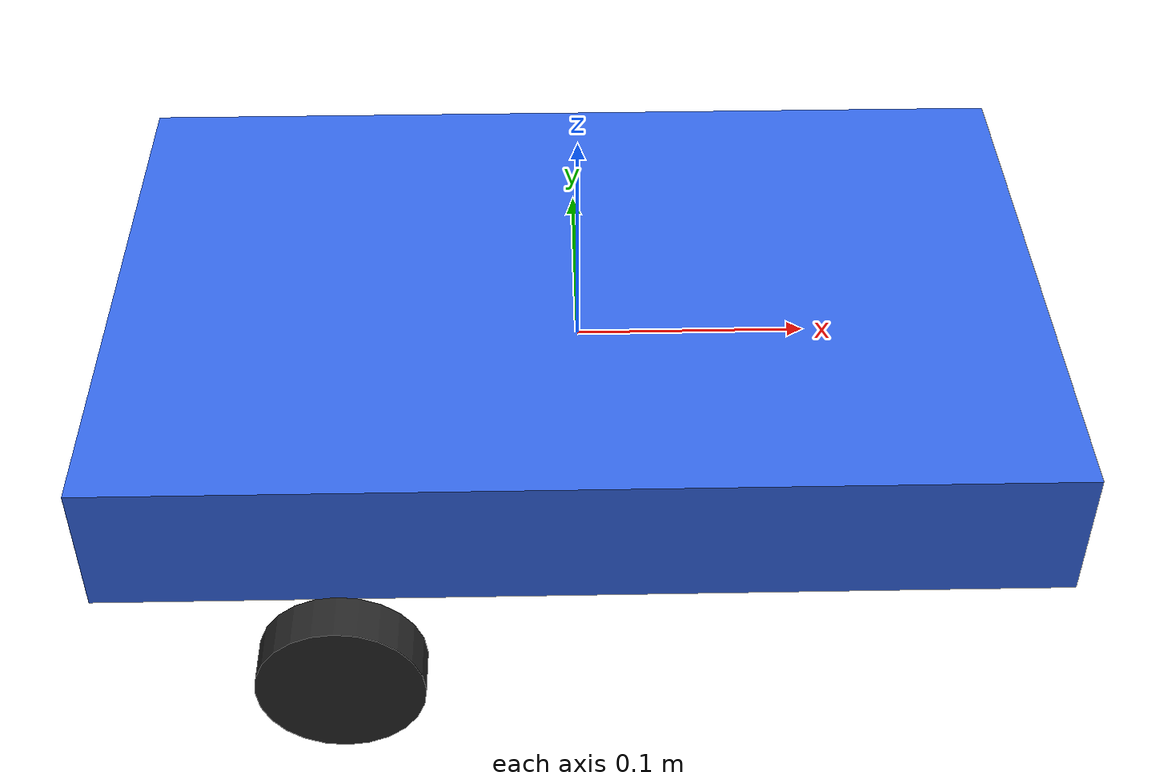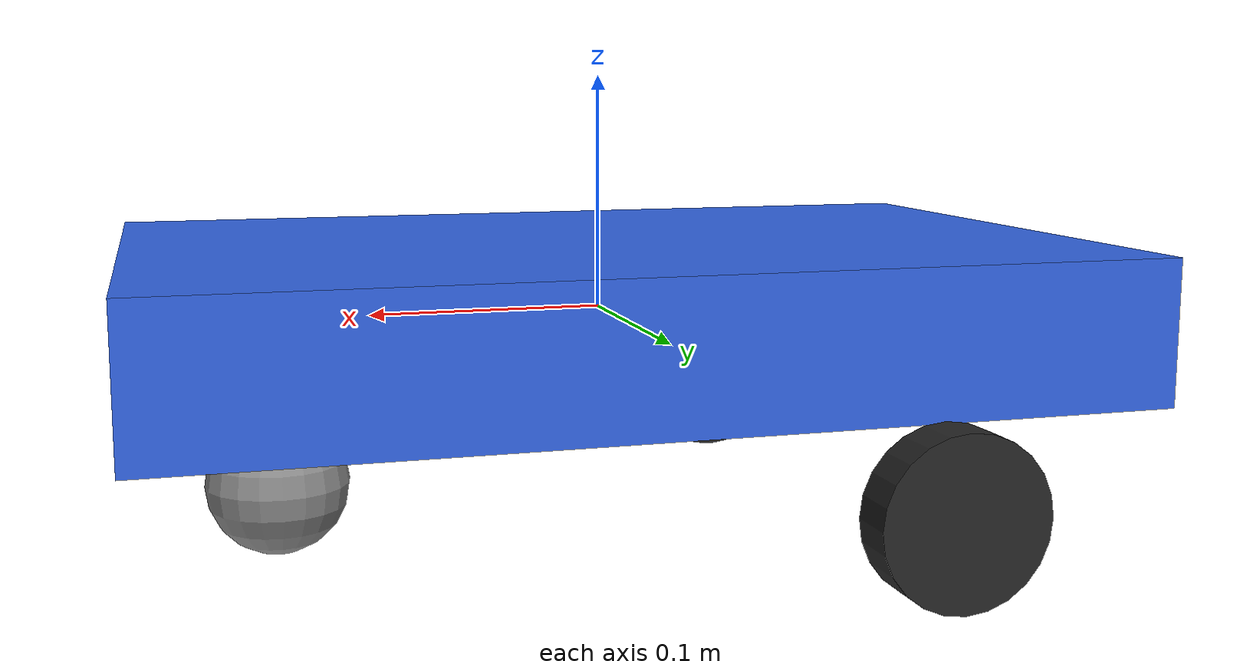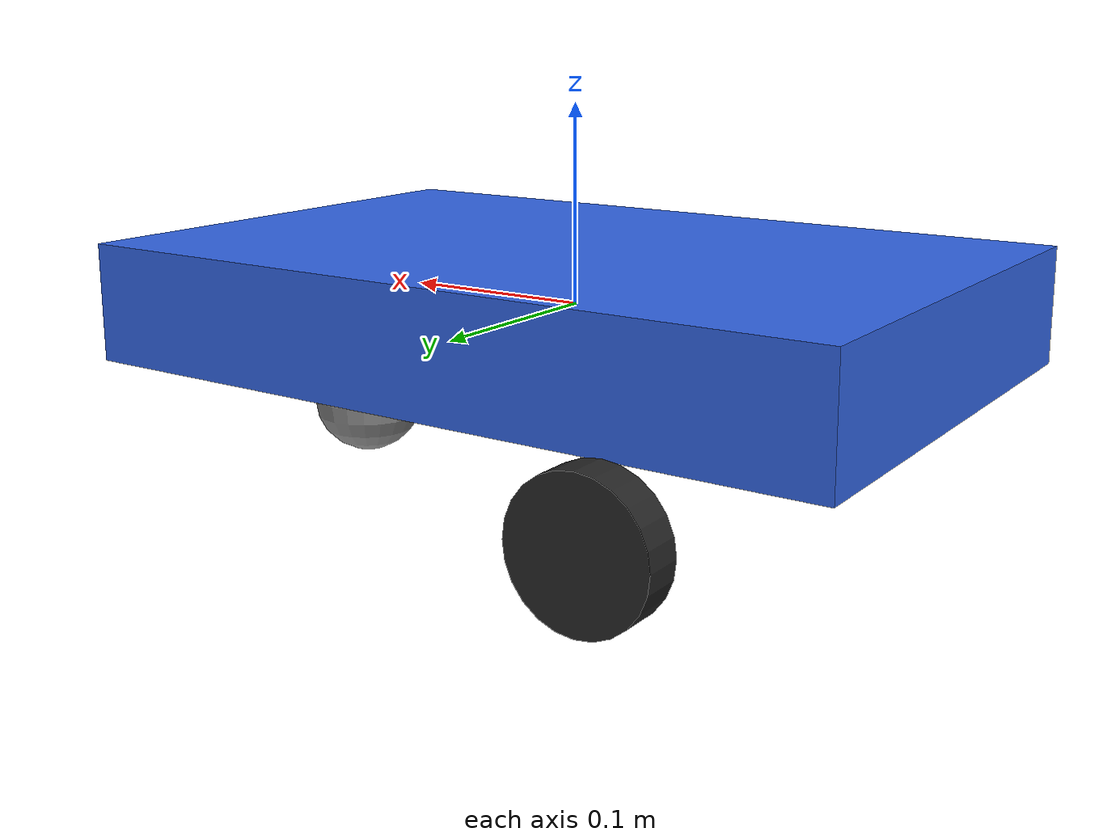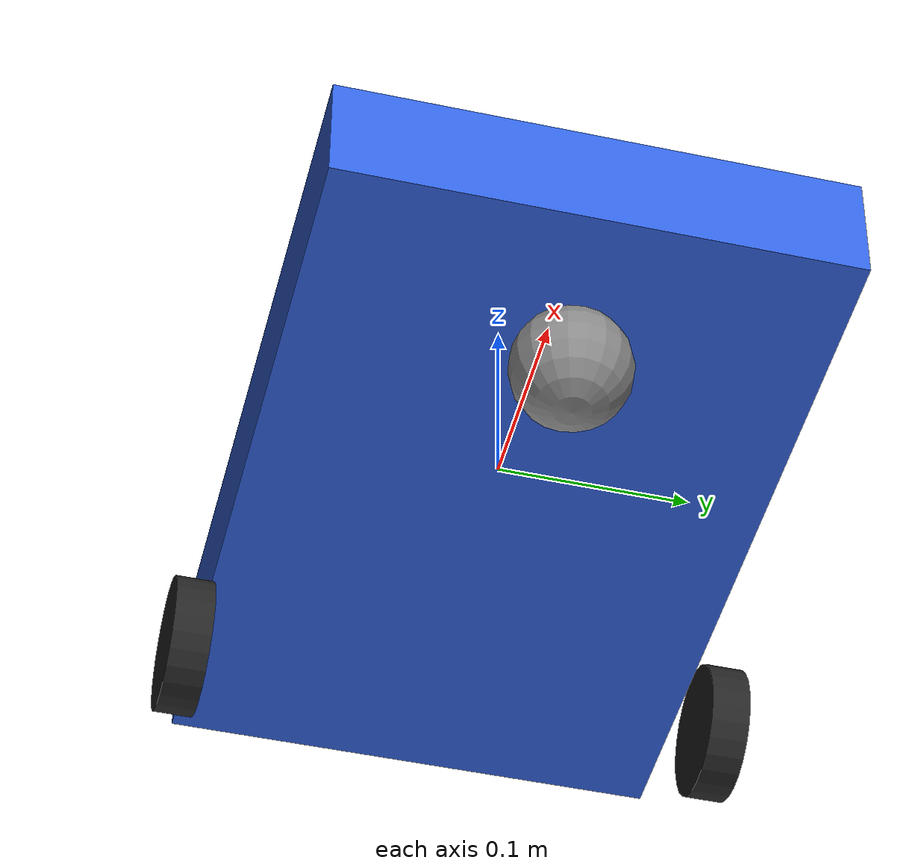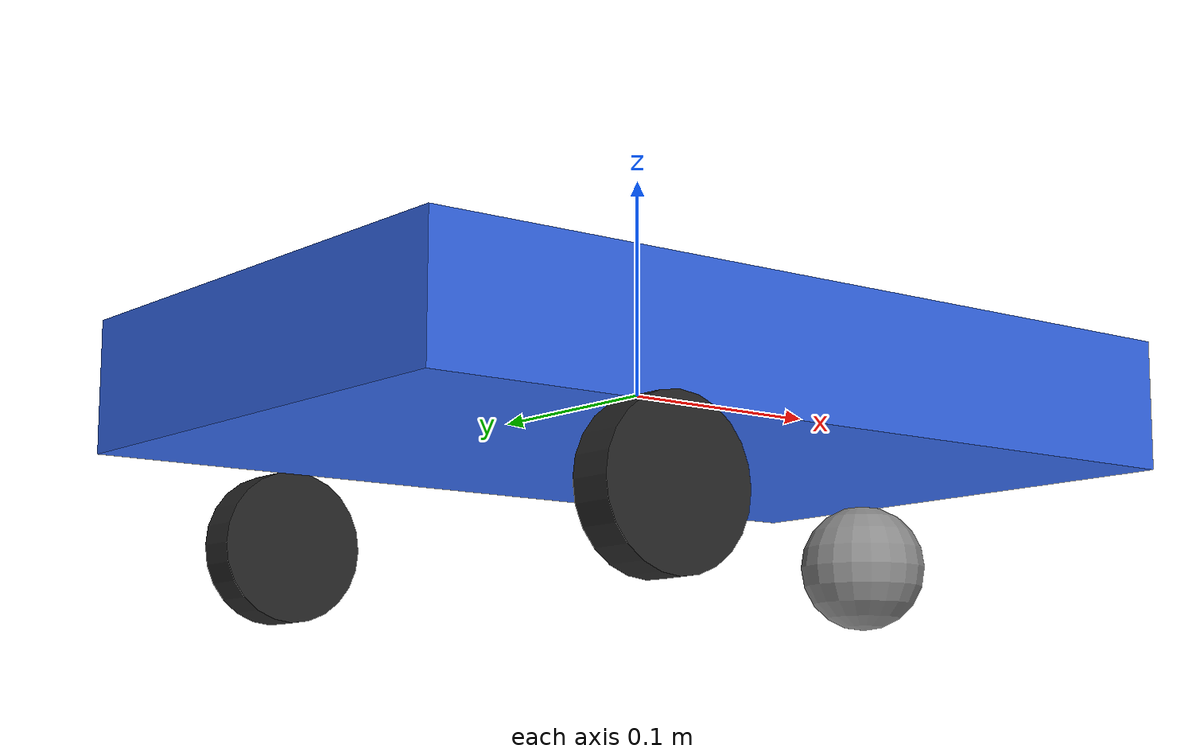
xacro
<?xml version="1.0"?>
<!-- D3 外壳：核心模型 + 经典 gazebo_ros diff_drive 插件（保持 D3 行为不变） -->
<robot xmlns:xacro="http://www.ros.org/wiki/xacro" name="mybot">

  <xacro:include filename="$(find mybot_description)/urdf/mybot_core.urdf.xacro"/>

  <!-- 经典 diff_drive 插件：订阅 /cmd_vel -> 轮速；发布 /odom、/joint_states 与 odom->base TF。
       已知缺陷（D3 实测）：publisher 消失后保持最后速度，无 command timeout -->
  <gazebo>
    <plugin name="diff_drive_controller" filename="libgazebo_ros_diff_drive.so">
      <update_rate>50</update_rate>
      <left_joint>wheel_left_joint</left_joint>
      <right_joint>wheel_right_joint</right_joint>
      <wheel_separation>${wheel_separation}</wheel_separation>
      <wheel_diameter>${2*wheel_radius}</wheel_diameter>
      <max_wheel_torque>2.0</max_wheel_torque>
      <max_wheel_acceleration>1.0</max_wheel_acceleration>
      <publish_odom>true</publish_odom>
      <publish_odom_tf>true</publish_odom_tf>
      <publish_wheel_tf>false</publish_wheel_tf>
      <publish_joints>joint_states</publish_joints>
      <odometry_frame>odom</odometry_frame>
      <robot_base_frame>base_link</robot_base_frame>
    </plugin>
  </gazebo>

</robot>

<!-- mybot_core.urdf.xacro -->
<robot xmlns:xacro="http://www.ros.org/wiki/xacro" name="mybot">

  <!-- ============ 参数表 ============ -->
  <xacro:property name="chassis_length"   value="0.40"/>
  <xacro:property name="chassis_width"    value="0.26"/>
  <xacro:property name="chassis_height"   value="0.06"/>
  <xacro:property name="chassis_mass"     value="1.0"/>

  <xacro:property name="wheel_radius"     value="0.035"/>
  <xacro:property name="wheel_width"      value="0.02"/>
  <xacro:property name="wheel_mass"       value="0.05"/>
  <xacro:property name="wheel_separation" value="0.28"/>   <!-- 左右轮心距 -->
  <xacro:property name="wheel_x_offset"   value="0.10"/>   <!-- 驱动轴在质心后方 -->
  <xacro:property name="wheel_clearance"  value="0.001"/>  <!-- 轮顶与车底留 1mm，防共面 -->

  <xacro:property name="caster_radius"    value="0.03"/>
  <xacro:property name="caster_mass"      value="0.02"/>
  <xacro:property name="caster_x_offset"  value="0.14"/>

  <!-- 派生高度：轮心 -> 地面线 -> 球心，全部由参数推导出，不再手填魔数 -->
  <xacro:property name="wheel_z"  value="${-(chassis_height/2 + wheel_radius) + wheel_clearance}"/>
  <xacro:property name="ground_z" value="${wheel_z - wheel_radius}"/>
  <xacro:property name="caster_z" value="${ground_z + caster_radius}"/>

  <!-- ============ 材质 ============ -->
  <material name="body_blue"><color rgba="0.20 0.40 0.90 1.0"/></material>
  <material name="tyre_grey"><color rgba="0.15 0.15 0.15 1.0"/></material>
  <material name="caster_grey"><color rgba="0.55 0.55 0.55 1.0"/></material>

  <!-- ============ 惯性宏 ============ -->
  <xacro:macro name="inertial_box" params="mass x y z">
    <inertial>
      <origin xyz="0 0 0"/>
      <mass value="${mass}"/>
      <inertia ixx="${mass/12.0*(y*y+z*z)}" ixy="0.0" ixz="0.0"
               iyy="${mass/12.0*(x*x+z*z)}" iyz="0.0"
               izz="${mass/12.0*(x*x+y*y)}"/>
    </inertial>
  </xacro:macro>

  <!-- 圆柱惯性在本地系（轴向 z），随 link 的 visual/collision origin 一起旋转 -->
  <xacro:macro name="inertial_cylinder" params="mass radius length">
    <inertial>
      <origin xyz="0 0 0"/>
      <mass value="${mass}"/>
      <inertia ixx="${mass/12.0*(3*radius*radius+length*length)}" ixy="0.0" ixz="0.0"
               iyy="${mass/12.0*(3*radius*radius+length*length)}" iyz="0.0"
               izz="${mass/2.0*radius*radius}"/>
    </inertial>
  </xacro:macro>

  <xacro:macro name="inertial_sphere" params="mass radius">
    <inertial>
      <origin xyz="0 0 0"/>
      <mass value="${mass}"/>
      <inertia ixx="${2.0/5.0*mass*radius*radius}" ixy="0.0" ixz="0.0"
               iyy="${2.0/5.0*mass*radius*radius}" iyz="0.0"
               izz="${2.0/5.0*mass*radius*radius}"/>
    </inertial>
  </xacro:macro>

  <!-- ============ 车体 ============ -->
  <link name="base_link">
    <visual>
      <geometry><box size="${chassis_length} ${chassis_width} ${chassis_height}"/></geometry>
      <material name="body_blue"/>
    </visual>
    <collision>
      <geometry><box size="${chassis_length} ${chassis_width} ${chassis_height}"/></geometry>
    </collision>
    <xacro:inertial_box mass="${chassis_mass}" x="${chassis_length}" y="${chassis_width}" z="${chassis_height}"/>
  </link>

  <!-- ============ 车轮宏 ============ -->
  <!-- 圆柱默认轴向 z，绕 x 转 90° 后轴朝 y（即车宽方向），与 joint axis (0 1 0) 匹配 -->
  <xacro:macro name="wheel" params="prefix y_sign">
    <link name="wheel_${prefix}_link">
      <visual>
        <origin xyz="0 0 0" rpy="${pi/2} 0 0"/>
        <geometry><cylinder radius="${wheel_radius}" length="${wheel_width}"/></geometry>
        <material name="tyre_grey"/>
      </visual>
      <collision>
        <origin xyz="0 0 0" rpy="${pi/2} 0 0"/>
        <geometry><cylinder radius="${wheel_radius}" length="${wheel_width}"/></geometry>
      </collision>
      <xacro:inertial_cylinder mass="${wheel_mass}" radius="${wheel_radius}" length="${wheel_width}"/>
    </link>

    <joint name="wheel_${prefix}_joint" type="continuous">
      <parent link="base_link"/>
      <child link="wheel_${prefix}_link"/>
      <origin xyz="${-wheel_x_offset} ${y_sign*wheel_separation/2} ${wheel_z}" rpy="0 0 0"/>
      <axis xyz="0 1 0"/>
    </joint>
  </xacro:macro>

  <xacro:wheel prefix="left"  y_sign="${1}"/>
  <xacro:wheel prefix="right" y_sign="${-1}"/>

  <!-- ============ 前端 caster 万向球 ============ -->
  <link name="caster_link">
    <visual>
      <geometry><sphere radius="${caster_radius}"/></geometry>
      <material name="caster_grey"/>
    </visual>
    <collision>
      <geometry><sphere radius="${caster_radius}"/></geometry>
    </collision>
    <xacro:inertial_sphere mass="${caster_mass}" radius="${caster_radius}"/>
  </link>

  <joint name="caster_joint" type="fixed">
    <parent link="base_link"/>
    <child link="caster_link"/>
    <origin xyz="${caster_x_offset} 0 ${caster_z}" rpy="0 0 0"/>
  </joint>

  <!-- ============ 传感器挂载点（D5 占位） ============ -->
  <link name="laser_link"/>
  <joint name="laser_joint" type="fixed">
    <parent link="base_link"/>
    <child link="laser_link"/>
    <origin xyz="0.10 0 0.035" rpy="0 0 0"/>
  </joint>

  <link name="camera_link"/>
  <xacro:property name="camera_x" value="0.21"/>
  <xacro:property name="camera_z" value="0.055"/>
  <xacro:arg name="camera_pitch" default="0.0"/>
  <joint name="camera_joint" type="fixed">
    <parent link="base_link"/>
    <child link="camera_link"/>
    <origin xyz="${camera_x} 0 ${camera_z}" rpy="0 $(arg camera_pitch) 0"/>
  </joint>

  <!-- ============ Gazebo 物理与差速驱动插件（D3） ============ -->
  <!-- 材质与摩擦：驱动轮高摩擦抓地，caster 近零摩擦模拟万向轮 -->
  <gazebo reference="base_link">
    <material>Gazebo/Blue</material>
  </gazebo>
  <gazebo reference="wheel_left_link">
    <material>Gazebo/FlatBlack</material>
    <mu1>1.5</mu1><mu2>1.5</mu2>
    <kp>1000000.0</kp><kd>100.0</kd>
    <minDepth>0.001</minDepth>
  </gazebo>
  <gazebo reference="wheel_right_link">
    <material>Gazebo/FlatBlack</material>
    <mu1>1.5</mu1><mu2>1.5</mu2>
    <kp>1000000.0</kp><kd>100.0</kd>
    <minDepth>0.001</minDepth>
  </gazebo>
  <gazebo reference="caster_link">
    <material>Gazebo/Grey</material>
    <mu1>0.001</mu1><mu2>0.001</mu2>
  </gazebo>

</robot>
